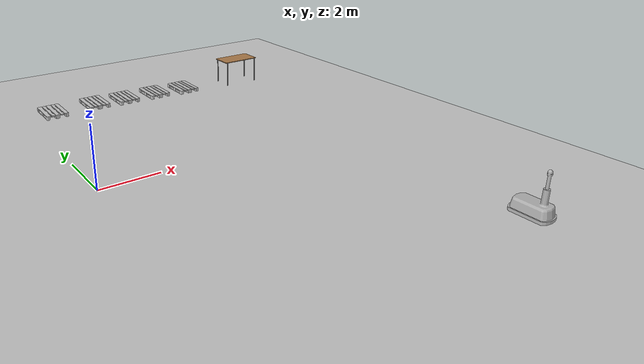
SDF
<sdf version="1.7">
 <world name="default">
  <light name="sun" type="directional">
   <pose>0 0 10 0 -0 0</pose>
   <diffuse>0.8 0.8 0.8 1</diffuse>
   <specular>0.2 0.2 0.2 1</specular>
   <attenuation>
    <range>1000</range>
    <constant>0.9</constant>
    <linear>0.01</linear>
    <quadratic>0.001</quadratic>
   </attenuation>
   <direction>-0.5 0.1 -0.9</direction>
   <spot><inner_angle>0</inner_angle><outer_angle>0</outer_angle><falloff>0</falloff></spot>
  </light>
  <model name="ground_plane">
   <static>1</static>
   <link name="link">
    <collision name="collision">
     <geometry><plane><normal>0 0 1</normal><size>100 100</size></plane></geometry>
     <surface><friction><ode><mu>100</mu><mu2>50</mu2></ode></friction></surface>
    </collision>
    <visual name="visual">
     <cast_shadows>0</cast_shadows>
     <geometry><plane><normal>0 0 1</normal><size>100 100</size></plane></geometry>
     <material>
      <script><uri>file://media/materials/scripts/gazebo.material</uri><name>Gazebo/Grey</name></script>
     </material>
    </visual>
   </link>
  </model>
  <gravity>0 0 -9.8</gravity>
  <magnetic_field>6e-06 2.3e-05 -4.2e-05</magnetic_field>
  <atmosphere type="adiabatic"/>
  <physics type="ode">
   <max_step_size>0.001</max_step_size>
   <real_time_factor>1</real_time_factor>
   <real_time_update_rate>1000</real_time_update_rate>
  </physics>
  <scene><ambient>0.4 0.4 0.4 1</ambient><background>0.7 0.7 0.7 1</background><shadows>1</shadows></scene>
  <audio><device>default</device></audio>
  <spherical_coordinates>
   <surface_model>EARTH_WGS84</surface_model>
   <latitude_deg>0</latitude_deg>
   <longitude_deg>0</longitude_deg>
   <elevation>0</elevation>
   <heading_deg>0</heading_deg>
  </spherical_coordinates>
  <model name="warehouse_robot">
   <static>0</static>
   <link name="link">
    <inertial>
     <pose>0 0 0.15 0 -0 0</pose>
     <mass>50</mass>
     <inertia><ixx>4.5255</ixx><ixy>0</ixy><ixz>0</ixz><iyy>1.45047</iyy><iyz>0</iyz><izz>5.64264</izz></inertia>
    </inertial>
    <visual name="visual">
     <geometry><mesh><uri>model://warehouse_robot/meshes/robot.dae</uri></mesh></geometry>
    </visual>
    <collision name="collision_base">
     <pose>0 0 0.20437 0 -0 0</pose>
     <surface><contact><ode><max_vel>0</max_vel><min_depth>0.001</min_depth></ode></contact></surface>
     <geometry><box><size>0.55508 1.0228 0.40874</size></box></geometry>
    </collision>
    <collision name="collision_bumper">
     <pose>0 0 0.062205 0 -0 0</pose>
     <geometry><box><size>0.67266 1.17126 0.12441</size></box></geometry>
     <surface><contact><ode><max_vel>0</max_vel><min_depth>0.001</min_depth></ode></contact></surface>
    </collision>
    <collision name="collision_column_large">
     <pose>0 -0.27539 0.43738 0 -0 0</pose>
     <geometry><cylinder><radius>0.08652</radius><length>0.87476</length></cylinder></geometry>
     <surface><contact><ode><max_vel>0</max_vel><min_depth>0.001</min_depth></ode></contact></surface>
    </collision>
    <collision name="collision_column_small">
     <pose>0 -0.27539 0.70424 0 -0 0</pose>
     <geometry><cylinder><radius>0.04261</radius><length>1.40848</length></cylinder></geometry>
     <surface><contact><ode><max_vel>0</max_vel><min_depth>0.001</min_depth></ode></contact></surface>
    </collision>
   </link>
   <pose>8.7257 -7.70482 -8e-06 1e-06 -0 0</pose>
  </model>
  <model name="table">
   <static>1</static>
   <link name="link">
    <collision name="surface">
     <pose>0 0 1 0 -0 0</pose>
     <geometry><box><size>1.5 0.8 0.03</size></box></geometry>
     <surface><friction><ode><mu>0.6</mu><mu2>0.6</mu2></ode></friction></surface>
    </collision>
    <visual name="visual1">
     <pose>0 0 1 0 -0 0</pose>
     <geometry><box><size>1.5 0.8 0.03</size></box></geometry>
     <material>
      <script><uri>file://media/materials/scripts/gazebo.material</uri><name>Gazebo/Wood</name></script>
     </material>
    </visual>
    <collision name="front_left_leg">
     <pose>0.68 0.38 0.5 0 -0 0</pose>
     <geometry><cylinder><radius>0.02</radius><length>1</length></cylinder></geometry>
    </collision>
    <visual name="front_left_leg">
     <pose>0.68 0.38 0.5 0 -0 0</pose>
     <geometry><cylinder><radius>0.02</radius><length>1</length></cylinder></geometry>
     <material>
      <script><uri>file://media/materials/scripts/gazebo.material</uri><name>Gazebo/Grey</name></script>
     </material>
    </visual>
    <collision name="front_right_leg">
     <pose>0.68 -0.38 0.5 0 -0 0</pose>
     <geometry><cylinder><radius>0.02</radius><length>1</length></cylinder></geometry>
    </collision>
    <visual name="front_right_leg">
     <pose>0.68 -0.38 0.5 0 -0 0</pose>
     <geometry><cylinder><radius>0.02</radius><length>1</length></cylinder></geometry>
     <material>
      <script><uri>file://media/materials/scripts/gazebo.material</uri><name>Gazebo/Grey</name></script>
     </material>
    </visual>
    <collision name="back_right_leg">
     <pose>-0.68 -0.38 0.5 0 -0 0</pose>
     <geometry><cylinder><radius>0.02</radius><length>1</length></cylinder></geometry>
    </collision>
    <visual name="back_right_leg">
     <pose>-0.68 -0.38 0.5 0 -0 0</pose>
     <geometry><cylinder><radius>0.02</radius><length>1</length></cylinder></geometry>
     <material>
      <script><uri>file://media/materials/scripts/gazebo.material</uri><name>Gazebo/Grey</name></script>
     </material>
    </visual>
    <collision name="back_left_leg">
     <pose>-0.68 0.38 0.5 0 -0 0</pose>
     <geometry><cylinder><radius>0.02</radius><length>1</length></cylinder></geometry>
    </collision>
    <visual name="back_left_leg">
     <pose>-0.68 0.38 0.5 0 -0 0</pose>
     <geometry><cylinder><radius>0.02</radius><length>1</length></cylinder></geometry>
     <material>
      <script><uri>file://media/materials/scripts/gazebo.material</uri><name>Gazebo/Grey</name></script>
     </material>
    </visual>
   </link>
   <pose>8.79049 6.15609 0 0 -0 0</pose>
  </model>
  <model name="euro_pallet">
   <link name="link">
    <inertial>
     <mass>20</mass>
     <inertia><ixx>2.43</ixx><ixy>0</ixy><ixz>0</ixz><iyy>1.1</iyy><iyz>0</iyz><izz>3.47</izz></inertia>
    </inertial>
    <collision name="collision">
     <pose>0 0 0.05 0 -0 0</pose>
     <geometry><mesh><uri>model://euro_pallet/meshes/pallet.dae</uri><scale>0.1 0.1 0.1</scale></mesh></geometry>
    </collision>
    <visual name="visual">
     <pose>0 0 0.05 0 -0 0</pose>
     <geometry><mesh><uri>model://euro_pallet/meshes/pallet.dae</uri><scale>0.1 0.1 0.1</scale></mesh></geometry>
    </visual>
   </link>
   <pose>6.3355 6.48565 0.071996 7e-06 7e-06 2.5e-05</pose>
  </model>
  <model name="euro_pallet_0">
   <link name="link">
    <inertial>
     <mass>20</mass>
     <inertia><ixx>2.43</ixx><ixy>0</ixy><ixz>0</ixz><iyy>1.1</iyy><iyz>0</iyz><izz>3.47</izz></inertia>
    </inertial>
    <collision name="collision">
     <pose>0 0 0.05 0 -0 0</pose>
     <geometry><mesh><uri>model://euro_pallet/meshes/pallet.dae</uri><scale>0.1 0.1 0.1</scale></mesh></geometry>
    </collision>
    <visual name="visual">
     <pose>0 0 0.05 0 -0 0</pose>
     <geometry><mesh><uri>model://euro_pallet/meshes/pallet.dae</uri><scale>0.1 0.1 0.1</scale></mesh></geometry>
    </visual>
   </link>
   <pose>5.08393 6.60948 0.071996 7e-06 8e-06 2.5e-05</pose>
  </model>
  <model name="euro_pallet_1">
   <link name="link">
    <inertial>
     <mass>20</mass>
     <inertia><ixx>2.43</ixx><ixy>0</ixy><ixz>0</ixz><iyy>1.1</iyy><iyz>0</iyz><izz>3.47</izz></inertia>
    </inertial>
    <collision name="collision">
     <pose>0 0 0.05 0 -0 0</pose>
     <geometry><mesh><uri>model://euro_pallet/meshes/pallet.dae</uri><scale>0.1 0.1 0.1</scale></mesh></geometry>
    </collision>
    <visual name="visual">
     <pose>0 0 0.05 0 -0 0</pose>
     <geometry><mesh><uri>model://euro_pallet/meshes/pallet.dae</uri><scale>0.1 0.1 0.1</scale></mesh></geometry>
    </visual>
   </link>
   <pose>3.79308 6.67295 0.071996 7e-06 8e-06 2.5e-05</pose>
  </model>
  <model name="euro_pallet_2">
   <link name="link">
    <inertial>
     <mass>20</mass>
     <inertia><ixx>2.43</ixx><ixy>0</ixy><ixz>0</ixz><iyy>1.1</iyy><iyz>0</iyz><izz>3.47</izz></inertia>
    </inertial>
    <collision name="collision">
     <pose>0 0 0.05 0 -0 0</pose>
     <geometry><mesh><uri>model://euro_pallet/meshes/pallet.dae</uri><scale>0.1 0.1 0.1</scale></mesh></geometry>
    </collision>
    <visual name="visual">
     <pose>0 0 0.05 0 -0 0</pose>
     <geometry><mesh><uri>model://euro_pallet/meshes/pallet.dae</uri><scale>0.1 0.1 0.1</scale></mesh></geometry>
    </visual>
   </link>
   <pose>2.60167 6.75596 0.071997 7e-06 9e-06 2.6e-05</pose>
  </model>
  <model name="euro_pallet_3">
   <link name="link">
    <inertial>
     <mass>20</mass>
     <inertia><ixx>2.43</ixx><ixy>0</ixy><ixz>0</ixz><iyy>1.1</iyy><iyz>0</iyz><izz>3.47</izz></inertia>
    </inertial>
    <collision name="collision">
     <pose>0 0 0.05 0 -0 0</pose>
     <geometry><mesh><uri>model://euro_pallet/meshes/pallet.dae</uri><scale>0.1 0.1 0.1</scale></mesh></geometry>
    </collision>
    <visual name="visual">
     <pose>0 0 0.05 0 -0 0</pose>
     <geometry><mesh><uri>model://euro_pallet/meshes/pallet.dae</uri><scale>0.1 0.1 0.1</scale></mesh></geometry>
    </visual>
   </link>
   <pose>0.950408 6.69593 0.071997 7e-06 9e-06 2.6e-05</pose>
  </model>
 </world>
</sdf>
